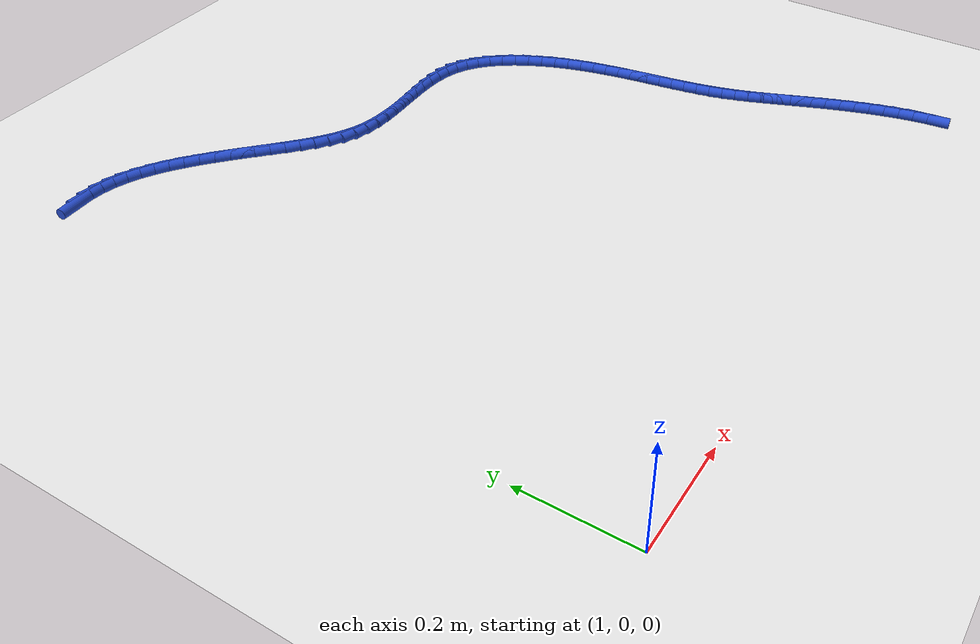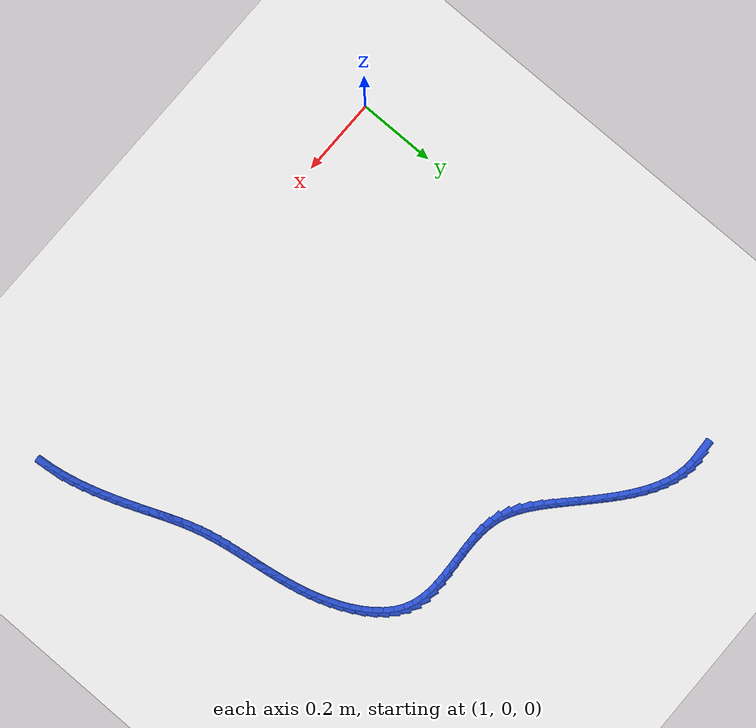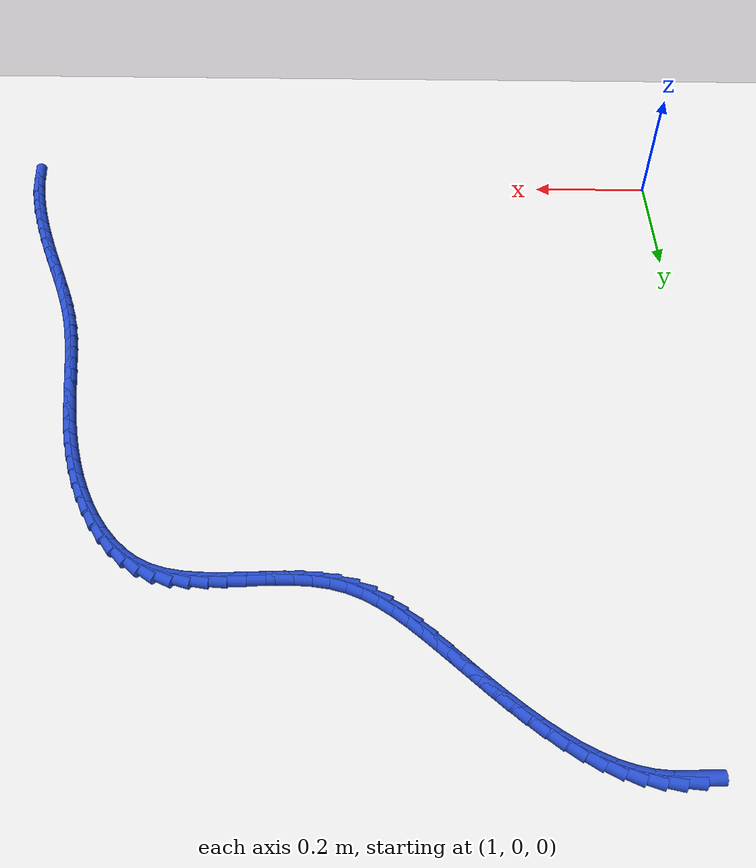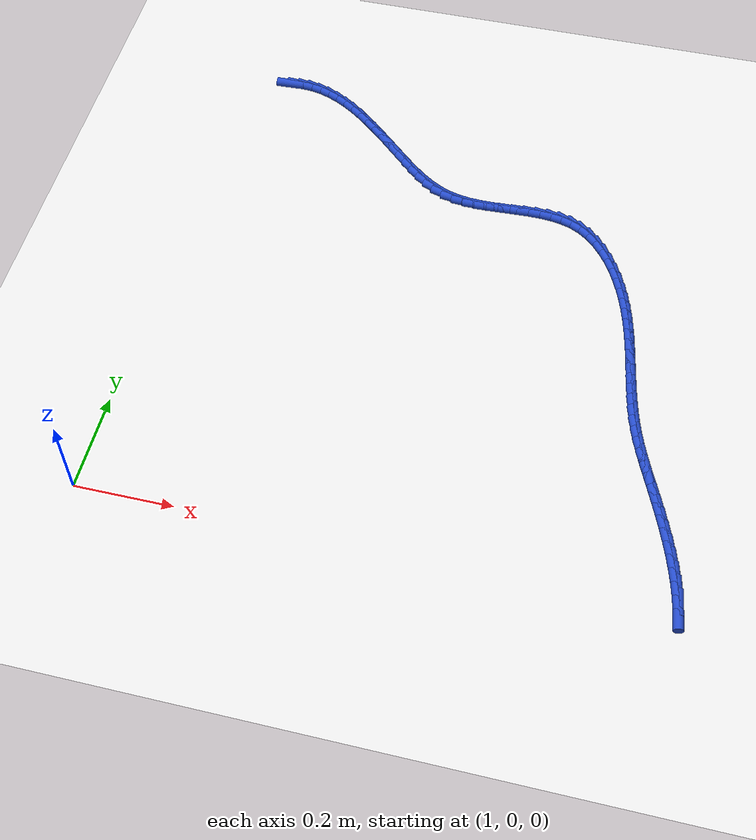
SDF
<sdf version="1.6">
 <world name="default">
  <model name="ground_plane">
   <static>1</static>
   <link name="link">
    <collision name="collision">
     <geometry><plane><normal>0 0 1</normal><size>100 100</size></plane></geometry>
     <surface><friction><ode><mu>100</mu><mu2>50</mu2></ode></friction></surface>
    </collision>
    <visual name="visual">
     <cast_shadows>0</cast_shadows>
     <geometry><plane><normal>0 0 1</normal><size>100 100</size></plane></geometry>
     <material>
      <script><uri>file://media/materials/scripts/gazebo.material</uri><name>Gazebo/WhiteGlow</name></script>
     </material>
    </visual>
   </link>
  </model>
  <model name="line">
   <link name="link_67">
    <pose>1.1222004809420456 1.1452826102378861 0.01 0 1.57 0.04193105881487186</pose>
    <collision name="collision">
     <geometry><cylinder><radius>0.01</radius><length>0.08</length></cylinder></geometry>
    </collision>
    <visual name="visual">
     <material>
      <script><name>Gazebo/Blue</name><uri>file://media/materials/scripts/gazebo.material</uri></script>
     </material>
     <geometry><cylinder><radius>0.01</radius><length>0.08</length></cylinder></geometry>
    </visual>
   </link>
   <link name="link_68">
    <pose>1.1462480472539893 1.1462915415301924 0.01 0 1.57 -0.08743163700824086</pose>
    <collision name="collision">
     <geometry><cylinder><radius>0.01</radius><length>0.08</length></cylinder></geometry>
    </collision>
    <visual name="visual">
     <material>
      <script><name>Gazebo/Blue</name><uri>file://media/materials/scripts/gazebo.material</uri></script>
     </material>
     <geometry><cylinder><radius>0.01</radius><length>0.08</length></cylinder></geometry>
    </visual>
   </link>
   <link name="link_69">
    <pose>1.1698132841623476 1.1442259282233576 0.01 0 1.57 -0.21465080903056108</pose>
    <collision name="collision">
     <geometry><cylinder><radius>0.01</radius><length>0.08</length></cylinder></geometry>
    </collision>
    <visual name="visual">
     <material>
      <script><name>Gazebo/Blue</name><uri>file://media/materials/scripts/gazebo.material</uri></script>
     </material>
     <geometry><cylinder><radius>0.01</radius><length>0.08</length></cylinder></geometry>
    </visual>
   </link>
   <link name="link_70">
    <pose>1.192878651884994 1.139197461293627 0.01 0 1.57 -0.3286902507180366</pose>
    <collision name="collision">
     <geometry><cylinder><radius>0.01</radius><length>0.08</length></cylinder></geometry>
    </collision>
    <visual name="visual">
     <material>
      <script><name>Gazebo/Blue</name><uri>file://media/materials/scripts/gazebo.material</uri></script>
     </material>
     <geometry><cylinder><radius>0.01</radius><length>0.08</length></cylinder></geometry>
    </visual>
   </link>
   <link name="link_71">
    <pose>1.2154803734587398 1.1314888704542576 0.01 0 1.57 -0.4275987860805969</pose>
    <collision name="collision">
     <geometry><cylinder><radius>0.01</radius><length>0.08</length></cylinder></geometry>
    </collision>
    <visual name="visual">
     <material>
      <script><name>Gazebo/Blue</name><uri>file://media/materials/scripts/gazebo.material</uri></script>
     </material>
     <geometry><cylinder><radius>0.01</radius><length>0.08</length></cylinder></geometry>
    </visual>
   </link>
   <link name="link_72">
    <pose>1.2376548806841392 1.1213835495705664 0.01 0 1.57 -0.5111789919671377</pose>
    <collision name="collision">
     <geometry><cylinder><radius>0.01</radius><length>0.08</length></cylinder></geometry>
    </collision>
    <visual name="visual">
     <material>
      <script><name>Gazebo/Blue</name><uri>file://media/materials/scripts/gazebo.material</uri></script>
     </material>
     <geometry><cylinder><radius>0.01</radius><length>0.08</length></cylinder></geometry>
    </visual>
   </link>
   <link name="link_73">
    <pose>1.2594386053617455 1.1091648925078692 0.01 0 1.57 -0.5802856245420731</pose>
    <collision name="collision">
     <geometry><cylinder><radius>0.01</radius><length>0.08</length></cylinder></geometry>
    </collision>
    <visual name="visual">
     <material>
      <script><name>Gazebo/Blue</name><uri>file://media/materials/scripts/gazebo.material</uri></script>
     </material>
     <geometry><cylinder><radius>0.01</radius><length>0.08</length></cylinder></geometry>
    </visual>
   </link>
   <link name="link_74">
    <pose>1.2808679792921134 1.0951162931314842 0.01 0 1.57 -0.6362333523583795</pose>
    <collision name="collision">
     <geometry><cylinder><radius>0.01</radius><length>0.08</length></cylinder></geometry>
    </collision>
    <visual name="visual">
     <material>
      <script><name>Gazebo/Blue</name><uri>file://media/materials/scripts/gazebo.material</uri></script>
     </material>
     <geometry><cylinder><radius>0.01</radius><length>0.08</length></cylinder></geometry>
    </visual>
   </link>
   <link name="link_75">
    <pose>1.3019794342757969 1.079521145306728 0.01 0 1.57 -0.6804036828599782</pose>
    <collision name="collision">
     <geometry><cylinder><radius>0.01</radius><length>0.08</length></cylinder></geometry>
    </collision>
    <visual name="visual">
     <material>
      <script><name>Gazebo/Blue</name><uri>file://media/materials/scripts/gazebo.material</uri></script>
     </material>
     <geometry><cylinder><radius>0.01</radius><length>0.08</length></cylinder></geometry>
    </visual>
   </link>
   <link name="link_76">
    <pose>1.3228094021133503 1.0626628428989173 0.01 0 1.57 -0.7140298193267032</pose>
    <collision name="collision">
     <geometry><cylinder><radius>0.01</radius><length>0.08</length></cylinder></geometry>
    </collision>
    <visual name="visual">
     <material>
      <script><name>Gazebo/Blue</name><uri>file://media/materials/scripts/gazebo.material</uri></script>
     </material>
     <geometry><cylinder><radius>0.01</radius><length>0.08</length></cylinder></geometry>
    </visual>
   </link>
   <link name="link_77">
    <pose>1.343394314605327 1.0448247797733692 0.01 0 1.57 -0.738097953793061</pose>
    <collision name="collision">
     <geometry><cylinder><radius>0.01</radius><length>0.08</length></cylinder></geometry>
    </collision>
    <visual name="visual">
     <material>
      <script><name>Gazebo/Blue</name><uri>file://media/materials/scripts/gazebo.material</uri></script>
     </material>
     <geometry><cylinder><radius>0.01</radius><length>0.08</length></cylinder></geometry>
    </visual>
   </link>
   <link name="link_78">
    <pose>1.3637706035522816 1.026290349795401 0.01 0 1.57 -0.7533109404504127</pose>
    <collision name="collision">
     <geometry><cylinder><radius>0.01</radius><length>0.08</length></cylinder></geometry>
    </collision>
    <visual name="visual">
     <material>
      <script><name>Gazebo/Blue</name><uri>file://media/materials/scripts/gazebo.material</uri></script>
     </material>
     <geometry><cylinder><radius>0.01</radius><length>0.08</length></cylinder></geometry>
    </visual>
   </link>
   <link name="link_79">
    <pose>1.3839747007547687 1.0073429468303294 0.01 0 1.57 -0.7600785764646717</pose>
    <collision name="collision">
     <geometry><cylinder><radius>0.01</radius><length>0.08</length></cylinder></geometry>
    </collision>
    <visual name="visual">
     <material>
      <script><name>Gazebo/Blue</name><uri>file://media/materials/scripts/gazebo.material</uri></script>
     </material>
     <geometry><cylinder><radius>0.01</radius><length>0.08</length></cylinder></geometry>
    </visual>
   </link>
   <link name="link_80">
    <pose>1.4040430380133404 0.9882659647434713 0.01 0 1.57 -0.7585138414490824</pose>
    <collision name="collision">
     <geometry><cylinder><radius>0.01</radius><length>0.08</length></cylinder></geometry>
    </collision>
    <visual name="visual">
     <material>
      <script><name>Gazebo/Blue</name><uri>file://media/materials/scripts/gazebo.material</uri></script>
     </material>
     <geometry><cylinder><radius>0.01</radius><length>0.08</length></cylinder></geometry>
    </visual>
   </link>
   <link name="link_81">
    <pose>1.4240120471285527 0.9693427974001434 0.01 0 1.57 -0.7479501904818517</pose>
    <collision name="collision">
     <geometry><cylinder><radius>0.01</radius><length>0.08</length></cylinder></geometry>
    </collision>
    <visual name="visual">
     <material>
      <script><name>Gazebo/Blue</name><uri>file://media/materials/scripts/gazebo.material</uri></script>
     </material>
     <geometry><cylinder><radius>0.01</radius><length>0.08</length></cylinder></geometry>
    </visual>
   </link>
   <link name="link_82">
    <pose>1.443927523505029 0.9508657168952637 0.01 0 1.57 -0.7223153956248793</pose>
    <collision name="collision">
     <geometry><cylinder><radius>0.01</radius><length>0.08</length></cylinder></geometry>
    </collision>
    <visual name="visual">
     <material>
      <script><name>Gazebo/Blue</name><uri>file://media/materials/scripts/gazebo.material</uri></script>
     </material>
     <geometry><cylinder><radius>0.01</radius><length>0.08</length></cylinder></geometry>
    </visual>
   </link>
   <link name="link_83">
    <pose>1.4639427137284262 0.9332288766345065 0.01 0 1.57 -0.6767731738078261</pose>
    <collision name="collision">
     <geometry><cylinder><radius>0.01</radius><length>0.08</length></cylinder></geometry>
    </collision>
    <visual name="visual">
     <material>
      <script><name>Gazebo/Blue</name><uri>file://media/materials/scripts/gazebo.material</uri></script>
     </material>
     <geometry><cylinder><radius>0.01</radius><length>0.08</length></cylinder></geometry>
    </visual>
   </link>
   <link name="link_84">
    <pose>1.4842795283573547 0.916891534711082 0.01 0 1.57 -0.6094553774091954</pose>
    <collision name="collision">
     <geometry><cylinder><radius>0.01</radius><length>0.08</length></cylinder></geometry>
    </collision>
    <visual name="visual">
     <material>
      <script><name>Gazebo/Blue</name><uri>file://media/materials/scripts/gazebo.material</uri></script>
     </material>
     <geometry><cylinder><radius>0.01</radius><length>0.08</length></cylinder></geometry>
    </visual>
   </link>
   <link name="link_85">
    <pose>1.5051609930874839 0.9023140065506928 0.01 0 1.57 -0.5186745632117382</pose>
    <collision name="collision">
     <geometry><cylinder><radius>0.01</radius><length>0.08</length></cylinder></geometry>
    </collision>
    <visual name="visual">
     <material>
      <script><name>Gazebo/Blue</name><uri>file://media/materials/scripts/gazebo.material</uri></script>
     </material>
     <geometry><cylinder><radius>0.01</radius><length>0.08</length></cylinder></geometry>
    </visual>
   </link>
   <link name="link_86">
    <pose>1.526810133614482 0.8899566075790422 0.01 0 1.57 -0.4039273271296346</pose>
    <collision name="collision">
     <geometry><cylinder><radius>0.01</radius><length>0.08</length></cylinder></geometry>
    </collision>
    <visual name="visual">
     <material>
      <script><name>Gazebo/Blue</name><uri>file://media/materials/scripts/gazebo.material</uri></script>
     </material>
     <geometry><cylinder><radius>0.01</radius><length>0.08</length></cylinder></geometry>
    </visual>
   </link>
   <link name="link_87">
    <pose>1.5494499756340188 0.8802796532218333 0.01 0 1.57 -0.2695141866518195</pose>
    <collision name="collision">
     <geometry><cylinder><radius>0.01</radius><length>0.08</length></cylinder></geometry>
    </collision>
    <visual name="visual">
     <material>
      <script><name>Gazebo/Blue</name><uri>file://media/materials/scripts/gazebo.material</uri></script>
     </material>
     <geometry><cylinder><radius>0.01</radius><length>0.08</length></cylinder></geometry>
    </visual>
   </link>
   <link name="link_88">
    <pose>1.5732826852961739 0.8736962203333054 0.01 0 1.57 -0.14713887892566568</pose>
    <collision name="collision">
     <geometry><cylinder><radius>0.01</radius><length>0.08</length></cylinder></geometry>
    </collision>
    <visual name="visual">
     <material>
      <script><name>Gazebo/Blue</name><uri>file://media/materials/scripts/gazebo.material</uri></script>
     </material>
     <geometry><cylinder><radius>0.01</radius><length>0.08</length></cylinder></geometry>
    </visual>
   </link>
   <link name="link_89">
    <pose>1.5982359899344063 0.8699978910378251 0.01 0 1.57 -0.056506062015166045</pose>
    <collision name="collision">
     <geometry><cylinder><radius>0.01</radius><length>0.08</length></cylinder></geometry>
    </collision>
    <visual name="visual">
     <material>
      <script><name>Gazebo/Blue</name><uri>file://media/materials/scripts/gazebo.material</uri></script>
     </material>
     <geometry><cylinder><radius>0.01</radius><length>0.08</length></cylinder></geometry>
    </visual>
   </link>
   <link name="link_90">
    <pose>1.6240441058455097 0.8685380219531007 0.01 0 1.57 0.0046516184004331594</pose>
    <collision name="collision">
     <geometry><cylinder><radius>0.01</radius><length>0.08</length></cylinder></geometry>
    </collision>
    <visual name="visual">
     <material>
      <script><name>Gazebo/Blue</name><uri>file://media/materials/scripts/gazebo.material</uri></script>
     </material>
     <geometry><cylinder><radius>0.01</radius><length>0.08</length></cylinder></geometry>
    </visual>
   </link>
   <link name="link_91">
    <pose>1.650437197281841 0.868660793428363 0.01 0 1.57 0.03927824934825642</pose>
    <collision name="collision">
     <geometry><cylinder><radius>0.01</radius><length>0.08</length></cylinder></geometry>
    </collision>
    <visual name="visual">
     <material>
      <script><name>Gazebo/Blue</name><uri>file://media/materials/scripts/gazebo.material</uri></script>
     </material>
     <geometry><cylinder><radius>0.01</radius><length>0.08</length></cylinder></geometry>
    </visual>
   </link>
   <link name="link_92">
    <pose>1.6771454284957583 0.8697103858128428 0.01 0 1.57 0.04932143099108213</pose>
    <collision name="collision">
     <geometry><cylinder><radius>0.01</radius><length>0.08</length></cylinder></geometry>
    </collision>
    <visual name="visual">
     <material>
      <script><name>Gazebo/Blue</name><uri>file://media/materials/scripts/gazebo.material</uri></script>
     </material>
     <geometry><cylinder><radius>0.01</radius><length>0.08</length></cylinder></geometry>
    </visual>
   </link>
   <link name="link_93">
    <pose>1.7038989637396191 0.8710309794557706 0.01 0 1.57 0.03525904891644092</pose>
    <collision name="collision">
     <geometry><cylinder><radius>0.01</radius><length>0.08</length></cylinder></geometry>
    </collision>
    <visual name="visual">
     <material>
      <script><name>Gazebo/Blue</name><uri>file://media/materials/scripts/gazebo.material</uri></script>
     </material>
     <geometry><cylinder><radius>0.01</radius><length>0.08</length></cylinder></geometry>
    </visual>
   </link>
   <link name="link_94">
    <pose>1.730427967265781 0.8719667547063767 0.01 0 1.57 -0.004027796861501144</pose>
    <collision name="collision">
     <geometry><cylinder><radius>0.01</radius><length>0.08</length></cylinder></geometry>
    </collision>
    <visual name="visual">
     <material>
      <script><name>Gazebo/Blue</name><uri>file://media/materials/scripts/gazebo.material</uri></script>
     </material>
     <geometry><cylinder><radius>0.01</radius><length>0.08</length></cylinder></geometry>
    </visual>
   </link>
   <link name="link_95">
    <pose>1.756462603326601 0.8718618919138919 0.01 0 1.57 -0.07116137962731606</pose>
    <collision name="collision">
     <geometry><cylinder><radius>0.01</radius><length>0.08</length></cylinder></geometry>
    </collision>
    <visual name="visual">
     <material>
      <script><name>Gazebo/Blue</name><uri>file://media/materials/scripts/gazebo.material</uri></script>
     </material>
     <geometry><cylinder><radius>0.01</radius><length>0.08</length></cylinder></geometry>
    </visual>
   </link>
   <link name="link_96">
    <pose>1.7817330361744361 0.8700605714275467 0.01 0 1.57 -0.16972967174207992</pose>
    <collision name="collision">
     <geometry><cylinder><radius>0.01</radius><length>0.08</length></cylinder></geometry>
    </collision>
    <visual name="visual">
     <material>
      <script><name>Gazebo/Blue</name><uri>file://media/materials/scripts/gazebo.material</uri></script>
     </material>
     <geometry><cylinder><radius>0.01</radius><length>0.08</length></cylinder></geometry>
    </visual>
   </link>
   <link name="link_97">
    <pose>1.8059694300616447 0.8659069735965715 0.01 0 1.57 -0.30269745025292033</pose>
    <collision name="collision">
     <geometry><cylinder><radius>0.01</radius><length>0.08</length></cylinder></geometry>
    </collision>
    <visual name="visual">
     <material>
      <script><name>Gazebo/Blue</name><uri>file://media/materials/scripts/gazebo.material</uri></script>
     </material>
     <geometry><cylinder><radius>0.01</radius><length>0.08</length></cylinder></geometry>
    </visual>
   </link>
   <link name="link_98">
    <pose>1.8289019492405845 0.8587452787701975 0.01 0 1.57 -0.46677637265455685</pose>
    <collision name="collision">
     <geometry><cylinder><radius>0.01</radius><length>0.08</length></cylinder></geometry>
    </collision>
    <visual name="visual">
     <material>
      <script><name>Gazebo/Blue</name><uri>file://media/materials/scripts/gazebo.material</uri></script>
     </material>
     <geometry><cylinder><radius>0.01</radius><length>0.08</length></cylinder></geometry>
    </visual>
   </link>
   <link name="link_99">
    <pose>1.850274858227614 0.847975104557877 0.01 0 1.57 -0.6279419408262584</pose>
    <collision name="collision">
     <geometry><cylinder><radius>0.01</radius><length>0.08</length></cylinder></geometry>
    </collision>
    <visual name="visual">
     <material>
      <script><name>Gazebo/Blue</name><uri>file://media/materials/scripts/gazebo.material</uri></script>
     </material>
     <geometry><cylinder><radius>0.01</radius><length>0.08</length></cylinder></geometry>
    </visual>
   </link>
   <link name="link_100">
    <pose>1.8700000791358273 0.8336552390510531 0.01 0 1.57 -0.7650778649873952</pose>
    <collision name="collision">
     <geometry><cylinder><radius>0.01</radius><length>0.08</length></cylinder></geometry>
    </collision>
    <visual name="visual">
     <material>
      <script><name>Gazebo/Blue</name><uri>file://media/materials/scripts/gazebo.material</uri></script>
     </material>
     <geometry><cylinder><radius>0.01</radius><length>0.08</length></cylinder></geometry>
    </visual>
   </link>
   <link name="link_101">
    <pose>1.8880995040571078 0.8162768334749403 0.01 0 1.57 -0.8795545050842294</pose>
    <collision name="collision">
     <geometry><cylinder><radius>0.01</radius><length>0.08</length></cylinder></geometry>
    </collision>
    <visual name="visual">
     <material>
      <script><name>Gazebo/Blue</name><uri>file://media/materials/scripts/gazebo.material</uri></script>
     </material>
     <geometry><cylinder><radius>0.01</radius><length>0.08</length></cylinder></geometry>
    </visual>
   </link>
   <link name="link_102">
    <pose>1.9045969406870047 0.796338570532093 0.01 0 1.57 -0.9748752949427961</pose>
    <collision name="collision">
     <geometry><cylinder><radius>0.01</radius><length>0.08</length></cylinder></geometry>
    </collision>
    <visual name="visual">
     <material>
      <script><name>Gazebo/Blue</name><uri>file://media/materials/scripts/gazebo.material</uri></script>
     </material>
     <geometry><cylinder><radius>0.01</radius><length>0.08</length></cylinder></geometry>
    </visual>
   </link>
   <link name="link_103">
    <pose>1.9195161967210668 0.774339132925064 0.01 0 1.57 -1.0548258357660034</pose>
    <collision name="collision">
     <geometry><cylinder><radius>0.01</radius><length>0.08</length></cylinder></geometry>
    </collision>
    <visual name="visual">
     <material>
      <script><name>Gazebo/Blue</name><uri>file://media/materials/scripts/gazebo.material</uri></script>
     </material>
     <geometry><cylinder><radius>0.01</radius><length>0.08</length></cylinder></geometry>
    </visual>
   </link>
   <link name="link_104">
    <pose>1.9328810798548424 0.7507772033564072 0.01 0 1.57 -1.122815611410617</pose>
    <collision name="collision">
     <geometry><cylinder><radius>0.01</radius><length>0.08</length></cylinder></geometry>
    </collision>
    <visual name="visual">
     <material>
      <script><name>Gazebo/Blue</name><uri>file://media/materials/scripts/gazebo.material</uri></script>
     </material>
     <geometry><cylinder><radius>0.01</radius><length>0.08</length></cylinder></geometry>
    </visual>
   </link>
   <link name="link_105">
    <pose>1.94471539778388 0.7261514645286763 0.01 0 1.57 -1.1817226941694174</pose>
    <collision name="collision">
     <geometry><cylinder><radius>0.01</radius><length>0.08</length></cylinder></geometry>
    </collision>
    <visual name="visual">
     <material>
      <script><name>Gazebo/Blue</name><uri>file://media/materials/scripts/gazebo.material</uri></script>
     </material>
     <geometry><cylinder><radius>0.01</radius><length>0.08</length></cylinder></geometry>
    </visual>
   </link>
   <link name="link_106">
    <pose>1.9550429582037288 0.7009605991444248 0.01 0 1.57 -1.2339732360330775</pose>
    <collision name="collision">
     <geometry><cylinder><radius>0.01</radius><length>0.08</length></cylinder></geometry>
    </collision>
    <visual name="visual">
     <material>
      <script><name>Gazebo/Blue</name><uri>file://media/materials/scripts/gazebo.material</uri></script>
     </material>
     <geometry><cylinder><radius>0.01</radius><length>0.08</length></cylinder></geometry>
    </visual>
   </link>
   <link name="link_107">
    <pose>1.9639114246876614 0.6756341675154082 0.01 0 1.57 -1.2807311738087934</pose>
    <collision name="collision">
     <geometry><cylinder><radius>0.01</radius><length>0.08</length></cylinder></geometry>
    </collision>
    <visual name="visual">
     <material>
      <script><name>Gazebo/Blue</name><uri>file://media/materials/scripts/gazebo.material</uri></script>
     </material>
     <geometry><cylinder><radius>0.01</radius><length>0.08</length></cylinder></geometry>
    </visual>
   </link>
   <link name="link_108">
    <pose>1.9714775265768874 0.6502857119589476 0.01 0 1.57 -1.3215588655272386</pose>
    <collision name="collision">
     <geometry><cylinder><radius>0.01</radius><length>0.08</length></cylinder></geometry>
    </collision>
    <visual name="visual">
     <material>
      <script><name>Gazebo/Blue</name><uri>file://media/materials/scripts/gazebo.material</uri></script>
     </material>
     <geometry><cylinder><radius>0.01</radius><length>0.08</length></cylinder></geometry>
    </visual>
   </link>
   <link name="link_109">
    <pose>1.9779291441413802 0.6249385149957418 0.01 0 1.57 -1.3559782386355221</pose>
    <collision name="collision">
     <geometry><cylinder><radius>0.01</radius><length>0.08</length></cylinder></geometry>
    </collision>
    <visual name="visual">
     <material>
      <script><name>Gazebo/Blue</name><uri>file://media/materials/scripts/gazebo.material</uri></script>
     </material>
     <geometry><cylinder><radius>0.01</radius><length>0.08</length></cylinder></geometry>
    </visual>
   </link>
   <link name="link_110">
    <pose>1.9834541600594016 0.5996158521684675 0.01 0 1.57 -1.3836425759229258</pose>
    <collision name="collision">
     <geometry><cylinder><radius>0.01</radius><length>0.08</length></cylinder></geometry>
    </collision>
    <visual name="visual">
     <material>
      <script><name>Gazebo/Blue</name><uri>file://media/materials/scripts/gazebo.material</uri></script>
     </material>
     <geometry><cylinder><radius>0.01</radius><length>0.08</length></cylinder></geometry>
    </visual>
   </link>
   <link name="link_111">
    <pose>1.9882404570092174 0.5743409990198017 0.01 0 1.57 -1.4043032617371474</pose>
    <collision name="collision">
     <geometry><cylinder><radius>0.01</radius><length>0.08</length></cylinder></geometry>
    </collision>
    <visual name="visual">
     <material>
      <script><name>Gazebo/Blue</name><uri>file://media/materials/scripts/gazebo.material</uri></script>
     </material>
     <geometry><cylinder><radius>0.01</radius><length>0.08</length></cylinder></geometry>
    </visual>
   </link>
   <link name="link_112">
    <pose>1.99247591766909 0.5491372310924215 0.01 0 1.57 -1.4177765932422772</pose>
    <collision name="collision">
     <geometry><cylinder><radius>0.01</radius><length>0.08</length></cylinder></geometry>
    </collision>
    <visual name="visual">
     <material>
      <script><name>Gazebo/Blue</name><uri>file://media/materials/scripts/gazebo.material</uri></script>
     </material>
     <geometry><cylinder><radius>0.01</radius><length>0.08</length></cylinder></geometry>
    </visual>
   </link>
   <link name="link_113">
    <pose>1.9963484247172831 0.5240278239290037 0.01 0 1.57 -1.4239156435922433</pose>
    <collision name="collision">
     <geometry><cylinder><radius>0.01</radius><length>0.08</length></cylinder></geometry>
    </collision>
    <visual name="visual">
     <material>
      <script><name>Gazebo/Blue</name><uri>file://media/materials/scripts/gazebo.material</uri></script>
     </material>
     <geometry><cylinder><radius>0.01</radius><length>0.08</length></cylinder></geometry>
    </visual>
   </link>
   <link name="link_114">
    <pose>2.0000458608320613 0.49903605307222476 0.01 0 1.57 -1.4225904708827553</pose>
    <collision name="collision">
     <geometry><cylinder><radius>0.01</radius><length>0.08</length></cylinder></geometry>
    </collision>
    <visual name="visual">
     <material>
      <script><name>Gazebo/Blue</name><uri>file://media/materials/scripts/gazebo.material</uri></script>
     </material>
     <geometry><cylinder><radius>0.01</radius><length>0.08</length></cylinder></geometry>
    </visual>
   </link>
   <link name="link_115">
    <pose>2.003756108691687 0.4741851940647616 0.01 0 1.57 -1.4136788528323567</pose>
    <collision name="collision">
     <geometry><cylinder><radius>0.01</radius><length>0.08</length></cylinder></geometry>
    </collision>
    <visual name="visual">
     <material>
      <script><name>Gazebo/Blue</name><uri>file://media/materials/scripts/gazebo.material</uri></script>
     </material>
     <geometry><cylinder><radius>0.01</radius><length>0.08</length></cylinder></geometry>
    </visual>
   </link>
   <link name="link_116">
    <pose>2.0076670509744243 0.4494985224492912 0.01 0 1.57 -1.3970691917543423</pose>
    <collision name="collision">
     <geometry><cylinder><radius>0.01</radius><length>0.08</length></cylinder></geometry>
    </collision>
    <visual name="visual">
     <material>
      <script><name>Gazebo/Blue</name><uri>file://media/materials/scripts/gazebo.material</uri></script>
     </material>
     <geometry><cylinder><radius>0.01</radius><length>0.08</length></cylinder></geometry>
    </visual>
   </link>
   <link name="link_117">
    <pose>2.0119665703585365 0.4249993137684906 0.01 0 1.57 -1.3726769955081521</pose>
    <collision name="collision">
     <geometry><cylinder><radius>0.01</radius><length>0.08</length></cylinder></geometry>
    </collision>
    <visual name="visual">
     <material>
      <script><name>Gazebo/Blue</name><uri>file://media/materials/scripts/gazebo.material</uri></script>
     </material>
     <geometry><cylinder><radius>0.01</radius><length>0.08</length></cylinder></geometry>
    </visual>
   </link>
   <link name="link_118">
    <pose>2.0168425495222877 0.40071084356503645 0.01 0 1.57 -1.340475919346857</pose>
    <collision name="collision">
     <geometry><cylinder><radius>0.01</radius><length>0.08</length></cylinder></geometry>
    </collision>
    <visual name="visual">
     <material>
      <script><name>Gazebo/Blue</name><uri>file://media/materials/scripts/gazebo.material</uri></script>
     </material>
     <geometry><cylinder><radius>0.01</radius><length>0.08</length></cylinder></geometry>
    </visual>
   </link>
   <link name="link_119">
    <pose>2.022482871143942 0.37665638738160584 0.01 0 1.57 -1.3007645775987604</pose>
    <collision name="collision">
     <geometry><cylinder><radius>0.01</radius><length>0.08</length></cylinder></geometry>
    </collision>
    <visual name="visual">
     <material>
      <script><name>Gazebo/Blue</name><uri>file://media/materials/scripts/gazebo.material</uri></script>
     </material>
     <geometry><cylinder><radius>0.01</radius><length>0.08</length></cylinder></geometry>
    </visual>
   </link>
   <link name="link_120">
    <pose>2.0290703172910822 0.3528571496943037 0.01 0 1.57 -1.2607961141467254</pose>
    <collision name="collision">
     <geometry><cylinder><radius>0.01</radius><length>0.08</length></cylinder></geometry>
    </collision>
    <visual name="visual">
     <material>
      <script><name>Gazebo/Blue</name><uri>file://media/materials/scripts/gazebo.material</uri></script>
     </material>
     <geometry><cylinder><radius>0.01</radius><length>0.08</length></cylinder></geometry>
    </visual>
   </link>
   <link name="link_121">
    <pose>2.036626314369918 0.32926881766427757 0.01 0 1.57 -1.2291691073848743</pose>
    <collision name="collision">
     <geometry><cylinder><radius>0.01</radius><length>0.08</length></cylinder></geometry>
    </collision>
    <visual name="visual">
     <material>
      <script><name>Gazebo/Blue</name><uri>file://media/materials/scripts/gazebo.material</uri></script>
     </material>
     <geometry><cylinder><radius>0.01</radius><length>0.08</length></cylinder></geometry>
    </visual>
   </link>
   <link name="link_122">
    <pose>2.04498184836249 0.30576975147731456 0.01 0 1.57 -1.2064821993502806</pose>
    <collision name="collision">
     <geometry><cylinder><radius>0.01</radius><length>0.08</length></cylinder></geometry>
    </collision>
    <visual name="visual">
     <material>
      <script><name>Gazebo/Blue</name><uri>file://media/materials/scripts/gazebo.material</uri></script>
     </material>
     <geometry><cylinder><radius>0.01</radius><length>0.08</length></cylinder></geometry>
    </visual>
   </link>
   <link name="link_123">
    <pose>2.053956937558084 0.2822338579658189 0.01 0 1.57 -1.192651630034704</pose>
    <collision name="collision">
     <geometry><cylinder><radius>0.01</radius><length>0.08</length></cylinder></geometry>
    </collision>
    <visual name="visual">
     <material>
      <script><name>Gazebo/Blue</name><uri>file://media/materials/scripts/gazebo.material</uri></script>
     </material>
     <geometry><cylinder><radius>0.01</radius><length>0.08</length></cylinder></geometry>
    </visual>
   </link>
   <link name="link_124">
    <pose>2.063371600245983 0.2585350439621937 0.01 0 1.57 -1.1874496694085497</pose>
    <collision name="collision">
     <geometry><cylinder><radius>0.01</radius><length>0.08</length></cylinder></geometry>
    </collision>
    <visual name="visual">
     <material>
      <script><name>Gazebo/Blue</name><uri>file://media/materials/scripts/gazebo.material</uri></script>
     </material>
     <geometry><cylinder><radius>0.01</radius><length>0.08</length></cylinder></geometry>
    </visual>
   </link>
   <link name="link_125">
    <pose>2.0730458547154735 0.23454721629884281 0.01 0 1.57 -1.190548186387805</pose>
    <collision name="collision">
     <geometry><cylinder><radius>0.01</radius><length>0.08</length></cylinder></geometry>
    </collision>
    <visual name="visual">
     <material>
      <script><name>Gazebo/Blue</name><uri>file://media/materials/scripts/gazebo.material</uri></script>
     </material>
     <geometry><cylinder><radius>0.01</radius><length>0.08</length></cylinder></geometry>
    </visual>
   </link>
   <link name="link_126">
    <pose>2.082799719255841 0.21014428180817027 0.01 0 1.57 -1.201437761378893</pose>
    <collision name="collision">
     <geometry><cylinder><radius>0.01</radius><length>0.08</length></cylinder></geometry>
    </collision>
    <visual name="visual">
     <material>
      <script><name>Gazebo/Blue</name><uri>file://media/materials/scripts/gazebo.material</uri></script>
     </material>
     <geometry><cylinder><radius>0.01</radius><length>0.08</length></cylinder></geometry>
    </visual>
   </link>
   <link name="link_127">
    <pose>2.092453515017007 0.18520715445890412 0.01 0 1.57 -1.2179215519238415</pose>
    <collision name="collision">
     <geometry><cylinder><radius>0.01</radius><length>0.08</length></cylinder></geometry>
    </collision>
    <visual name="visual">
     <material>
      <script><name>Gazebo/Blue</name><uri>file://media/materials/scripts/gazebo.material</uri></script>
     </material>
     <geometry><cylinder><radius>0.01</radius><length>0.08</length></cylinder></geometry>
    </visual>
   </link>
   <link name="link_128">
    <pose>2.101832881559299 0.1597397976432697 0.01 0 1.57 -1.238460684882363</pose>
    <collision name="collision">
     <geometry><cylinder><radius>0.01</radius><length>0.08</length></cylinder></geometry>
    </collision>
    <visual name="visual">
     <material>
      <script><name>Gazebo/Blue</name><uri>file://media/materials/scripts/gazebo.material</uri></script>
     </material>
     <geometry><cylinder><radius>0.01</radius><length>0.08</length></cylinder></geometry>
    </visual>
   </link>
   <link name="link_129">
    <pose>2.110767996376736 0.13385116667437744 0.01 0 1.57 -1.2632430522086353</pose>
    <collision name="collision">
     <geometry><cylinder><radius>0.01</radius><length>0.08</length></cylinder></geometry>
    </collision>
    <visual name="visual">
     <material>
      <script><name>Gazebo/Blue</name><uri>file://media/materials/scripts/gazebo.material</uri></script>
     </material>
     <geometry><cylinder><radius>0.01</radius><length>0.08</length></cylinder></geometry>
    </visual>
   </link>
   <link name="link_130">
    <pose>2.119089182495157 0.10765358396287403 0.01 0 1.57 -1.2926235775659345</pose>
    <collision name="collision">
     <geometry><cylinder><radius>0.01</radius><length>0.08</length></cylinder></geometry>
    </collision>
    <visual name="visual">
     <material>
      <script><name>Gazebo/Blue</name><uri>file://media/materials/scripts/gazebo.material</uri></script>
     </material>
     <geometry><cylinder><radius>0.01</radius><length>0.08</length></cylinder></geometry>
    </visual>
   </link>
   <link name="link_131">
    <pose>2.1266267629404014 0.08125937191940615 0.01 0 1.57 -1.3270739280407633</pose>
    <collision name="collision">
     <geometry><cylinder><radius>0.01</radius><length>0.08</length></cylinder></geometry>
    </collision>
    <visual name="visual">
     <material>
      <script><name>Gazebo/Blue</name><uri>file://media/materials/scripts/gazebo.material</uri></script>
     </material>
     <geometry><cylinder><radius>0.01</radius><length>0.08</length></cylinder></geometry>
    </visual>
   </link>
   <link name="link_132">
    <pose>2.133211060738307 0.054780852954620415 0.01 0 1.57 -1.3671836991561042</pose>
    <collision name="collision">
     <geometry><cylinder><radius>0.01</radius><length>0.08</length></cylinder></geometry>
    </collision>
    <visual name="visual">
     <material>
      <script><name>Gazebo/Blue</name><uri>file://media/materials/scripts/gazebo.material</uri></script>
     </material>
     <geometry><cylinder><radius>0.01</radius><length>0.08</length></cylinder></geometry>
    </visual>
   </link>
   <link name="link_133">
    <pose>2.138672398914714 0.028330349479163568 0.01 0 1.57 -1.4136580843106974</pose>
    <collision name="collision">
     <geometry><cylinder><radius>0.01</radius><length>0.08</length></cylinder></geometry>
    </collision>
    <visual name="visual">
     <material>
      <script><name>Gazebo/Blue</name><uri>file://media/materials/scripts/gazebo.material</uri></script>
     </material>
     <geometry><cylinder><radius>0.01</radius><length>0.08</length></cylinder></geometry>
    </visual>
   </link>
   <link name="link_134">
    <pose>2.1428411004954615 0.002020183903682693 0.01 0 1.57 -1.4673052630446812</pose>
    <collision name="collision">
     <geometry><cylinder><radius>0.01</radius><length>0.08</length></cylinder></geometry>
    </collision>
    <visual name="visual">
     <material>
      <script><name>Gazebo/Blue</name><uri>file://media/materials/scripts/gazebo.material</uri></script>
     </material>
     <geometry><cylinder><radius>0.01</radius><length>0.08</length></cylinder></geometry>
    </visual>
   </link>
  </model>
 </world>
</sdf>
